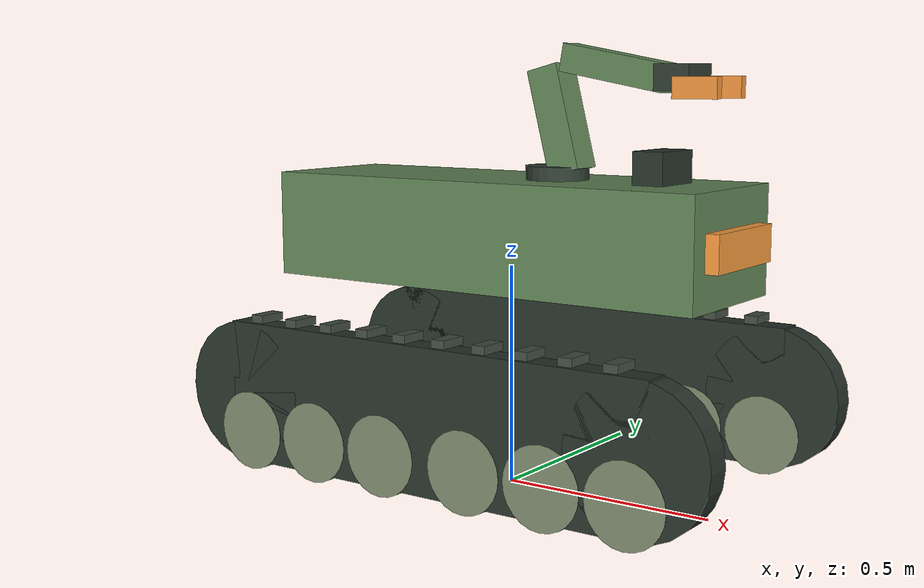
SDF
<?xml version='1.0' encoding='utf-8'?>
<sdf version="1.10">
  <model name="robot">
    <static>false</static>
    <link name="base_link">
      <inertial>
        <mass>41.0</mass>
        <pose>0 0 0.47 0 0 0</pose>
        <inertia>
          <ixx>0.5917666666666667</ixx>
          <iyy>4.182000000000001</iyy>
          <izz>4.380166666666667</izz>
        </inertia>
      </inertial>
      <collision name="body_collision">
        <pose>0 0 0.57 0 0 0</pose>
        <geometry>
          <box>
            <size>0.86 0.26 0.18</size>
          </box>
        </geometry>
        <surface>
          <friction>
            <ode>
              <mu>0.6</mu>
              <mu2>0.6</mu2>
            </ode>
          </friction>
        </surface>
      </collision>
      <visual name="body">
        <pose>0 0 0.58 0 0 0</pose>
        <geometry>
          <box>
            <size>1.08 0.34 0.24</size>
          </box>
        </geometry>
        <material>
          <diffuse>0.38 0.52 0.34 1</diffuse>
        </material>
      </visual>
      <visual name="front_marker">
        <pose>0.55 0 0.58 0 0 0</pose>
        <geometry>
          <box>
            <size>0.04 0.24480000000000002 0.08</size>
          </box>
        </geometry>
        <material>
          <diffuse>0.96 0.6 0.24 1</diffuse>
        </material>
      </visual>
      <visual name="camera">
        <pose>0.378 0 0.736 0 0 0</pose>
        <geometry>
          <box>
            <size>0.07 0.13 0.07</size>
          </box>
        </geometry>
        <material>
          <diffuse>0.16 0.2 0.17 1</diffuse>
        </material>
      </visual>
      <visual name="left_track_envelope">
        <pose>0 0.31 0.21 0 0 0</pose>
        <geometry>
          <box>
            <size>1.08 0.06 0.32</size>
          </box>
        </geometry>
        <material>
          <diffuse>0.16 0.2 0.17 1</diffuse>
        </material>
      </visual>
      <visual name="left_rear_idler_visual">
        <pose>-0.51 0.31 0.21 1.5707963267948966 0 0</pose>
        <geometry>
          <cylinder>
            <radius>0.16</radius>
            <length>0.06</length>
          </cylinder>
        </geometry>
        <material>
          <diffuse>0.16 0.2 0.17 1</diffuse>
        </material>
      </visual>
      <visual name="left_front_idler_visual">
        <pose>0.51 0.31 0.21 1.5707963267948966 0 0</pose>
        <geometry>
          <cylinder>
            <radius>0.16</radius>
            <length>0.06</length>
          </cylinder>
        </geometry>
        <material>
          <diffuse>0.16 0.2 0.17 1</diffuse>
        </material>
      </visual>
      <visual name="left_tread_0">
        <pose>-0.459 0.31 0.382 0 0 0</pose>
        <geometry>
          <box>
            <size>0.032 0.0648 0.018</size>
          </box>
        </geometry>
        <material>
          <diffuse>0.26 0.3 0.26 1</diffuse>
        </material>
      </visual>
      <visual name="left_tread_1">
        <pose>-0.357 0.31 0.382 0 0 0</pose>
        <geometry>
          <box>
            <size>0.032 0.0648 0.018</size>
          </box>
        </geometry>
        <material>
          <diffuse>0.26 0.3 0.26 1</diffuse>
        </material>
      </visual>
      <visual name="left_tread_2">
        <pose>-0.255 0.31 0.382 0 0 0</pose>
        <geometry>
          <box>
            <size>0.032 0.0648 0.018</size>
          </box>
        </geometry>
        <material>
          <diffuse>0.26 0.3 0.26 1</diffuse>
        </material>
      </visual>
      <visual name="left_tread_3">
        <pose>-0.15299999999999997 0.31 0.382 0 0 0</pose>
        <geometry>
          <box>
            <size>0.032 0.0648 0.018</size>
          </box>
        </geometry>
        <material>
          <diffuse>0.26 0.3 0.26 1</diffuse>
        </material>
      </visual>
      <visual name="left_tread_4">
        <pose>-0.051000000000000045 0.31 0.382 0 0 0</pose>
        <geometry>
          <box>
            <size>0.032 0.0648 0.018</size>
          </box>
        </geometry>
        <material>
          <diffuse>0.26 0.3 0.26 1</diffuse>
        </material>
      </visual>
      <visual name="left_tread_5">
        <pose>0.051000000000000045 0.31 0.382 0 0 0</pose>
        <geometry>
          <box>
            <size>0.032 0.0648 0.018</size>
          </box>
        </geometry>
        <material>
          <diffuse>0.26 0.3 0.26 1</diffuse>
        </material>
      </visual>
      <visual name="left_tread_6">
        <pose>0.15300000000000002 0.31 0.382 0 0 0</pose>
        <geometry>
          <box>
            <size>0.032 0.0648 0.018</size>
          </box>
        </geometry>
        <material>
          <diffuse>0.26 0.3 0.26 1</diffuse>
        </material>
      </visual>
      <visual name="left_tread_7">
        <pose>0.255 0.31 0.382 0 0 0</pose>
        <geometry>
          <box>
            <size>0.032 0.0648 0.018</size>
          </box>
        </geometry>
        <material>
          <diffuse>0.26 0.3 0.26 1</diffuse>
        </material>
      </visual>
      <visual name="left_tread_8">
        <pose>0.357 0.31 0.382 0 0 0</pose>
        <geometry>
          <box>
            <size>0.032 0.0648 0.018</size>
          </box>
        </geometry>
        <material>
          <diffuse>0.26 0.3 0.26 1</diffuse>
        </material>
      </visual>
      <visual name="left_tread_9">
        <pose>0.45899999999999996 0.31 0.382 0 0 0</pose>
        <geometry>
          <box>
            <size>0.032 0.0648 0.018</size>
          </box>
        </geometry>
        <material>
          <diffuse>0.26 0.3 0.26 1</diffuse>
        </material>
      </visual>
      <visual name="right_track_envelope">
        <pose>0 -0.31 0.21 0 0 0</pose>
        <geometry>
          <box>
            <size>1.08 0.06 0.32</size>
          </box>
        </geometry>
        <material>
          <diffuse>0.16 0.2 0.17 1</diffuse>
        </material>
      </visual>
      <visual name="right_rear_idler_visual">
        <pose>-0.51 -0.31 0.21 1.5707963267948966 0 0</pose>
        <geometry>
          <cylinder>
            <radius>0.16</radius>
            <length>0.06</length>
          </cylinder>
        </geometry>
        <material>
          <diffuse>0.16 0.2 0.17 1</diffuse>
        </material>
      </visual>
      <visual name="right_front_idler_visual">
        <pose>0.51 -0.31 0.21 1.5707963267948966 0 0</pose>
        <geometry>
          <cylinder>
            <radius>0.16</radius>
            <length>0.06</length>
          </cylinder>
        </geometry>
        <material>
          <diffuse>0.16 0.2 0.17 1</diffuse>
        </material>
      </visual>
      <visual name="right_tread_0">
        <pose>-0.459 -0.31 0.382 0 0 0</pose>
        <geometry>
          <box>
            <size>0.032 0.0648 0.018</size>
          </box>
        </geometry>
        <material>
          <diffuse>0.26 0.3 0.26 1</diffuse>
        </material>
      </visual>
      <visual name="right_tread_1">
        <pose>-0.357 -0.31 0.382 0 0 0</pose>
        <geometry>
          <box>
            <size>0.032 0.0648 0.018</size>
          </box>
        </geometry>
        <material>
          <diffuse>0.26 0.3 0.26 1</diffuse>
        </material>
      </visual>
      <visual name="right_tread_2">
        <pose>-0.255 -0.31 0.382 0 0 0</pose>
        <geometry>
          <box>
            <size>0.032 0.0648 0.018</size>
          </box>
        </geometry>
        <material>
          <diffuse>0.26 0.3 0.26 1</diffuse>
        </material>
      </visual>
      <visual name="right_tread_3">
        <pose>-0.15299999999999997 -0.31 0.382 0 0 0</pose>
        <geometry>
          <box>
            <size>0.032 0.0648 0.018</size>
          </box>
        </geometry>
        <material>
          <diffuse>0.26 0.3 0.26 1</diffuse>
        </material>
      </visual>
      <visual name="right_tread_4">
        <pose>-0.051000000000000045 -0.31 0.382 0 0 0</pose>
        <geometry>
          <box>
            <size>0.032 0.0648 0.018</size>
          </box>
        </geometry>
        <material>
          <diffuse>0.26 0.3 0.26 1</diffuse>
        </material>
      </visual>
      <visual name="right_tread_5">
        <pose>0.051000000000000045 -0.31 0.382 0 0 0</pose>
        <geometry>
          <box>
            <size>0.032 0.0648 0.018</size>
          </box>
        </geometry>
        <material>
          <diffuse>0.26 0.3 0.26 1</diffuse>
        </material>
      </visual>
      <visual name="right_tread_6">
        <pose>0.15300000000000002 -0.31 0.382 0 0 0</pose>
        <geometry>
          <box>
            <size>0.032 0.0648 0.018</size>
          </box>
        </geometry>
        <material>
          <diffuse>0.26 0.3 0.26 1</diffuse>
        </material>
      </visual>
      <visual name="right_tread_7">
        <pose>0.255 -0.31 0.382 0 0 0</pose>
        <geometry>
          <box>
            <size>0.032 0.0648 0.018</size>
          </box>
        </geometry>
        <material>
          <diffuse>0.26 0.3 0.26 1</diffuse>
        </material>
      </visual>
      <visual name="right_tread_8">
        <pose>0.357 -0.31 0.382 0 0 0</pose>
        <geometry>
          <box>
            <size>0.032 0.0648 0.018</size>
          </box>
        </geometry>
        <material>
          <diffuse>0.26 0.3 0.26 1</diffuse>
        </material>
      </visual>
      <visual name="right_tread_9">
        <pose>0.45899999999999996 -0.31 0.382 0 0 0</pose>
        <geometry>
          <box>
            <size>0.032 0.0648 0.018</size>
          </box>
        </geometry>
        <material>
          <diffuse>0.26 0.3 0.26 1</diffuse>
        </material>
      </visual>
      <visual name="arm_base_0">
        <pose>0.12 0 0.6799999999999999 0 0 0</pose>
        <geometry>
          <cylinder>
            <radius>0.07</radius>
            <length>0.1</length>
          </cylinder>
        </geometry>
        <material>
          <diffuse>0.18 0.23 0.19 1</diffuse>
        </material>
      </visual>
      <visual name="upper_arm_0">
        <pose>0.13 0 0.83 0 -0.25 0</pose>
        <geometry>
          <box>
            <size>0.075 0.075 0.23</size>
          </box>
        </geometry>
        <material>
          <diffuse>0.38 0.52 0.34 1</diffuse>
        </material>
      </visual>
      <visual name="forearm_0">
        <pose>0.27 0 0.94 0 0.18 0</pose>
        <geometry>
          <box>
            <size>0.25 0.06 0.06</size>
          </box>
        </geometry>
        <material>
          <diffuse>0.38 0.52 0.34 1</diffuse>
        </material>
      </visual>
      <visual name="wrist_0">
        <pose>0.42 0 0.9199999999999999 0 0 0</pose>
        <geometry>
          <box>
            <size>0.08 0.1 0.055</size>
          </box>
        </geometry>
        <material>
          <diffuse>0.18 0.23 0.19 1</diffuse>
        </material>
      </visual>
      <visual name="jaw_0_-0.055">
        <pose>0.48 -0.055 0.8999999999999999 0 0 0</pose>
        <geometry>
          <box>
            <size>0.1 0.02 0.045</size>
          </box>
        </geometry>
        <material>
          <diffuse>0.94 0.58 0.24 1</diffuse>
        </material>
      </visual>
      <visual name="jaw_0_0.055">
        <pose>0.48 0.055 0.8999999999999999 0 0 0</pose>
        <geometry>
          <box>
            <size>0.1 0.02 0.045</size>
          </box>
        </geometry>
        <material>
          <diffuse>0.94 0.58 0.24 1</diffuse>
        </material>
      </visual>
      <sensor name="imu" type="imu">
        <always_on>true</always_on>
        <update_rate>50</update_rate>
        <topic>/garden/imu</topic>
        <imu />
      </sensor>
    </link>
    <link name="left_carrier_0">
      <pose>-0.49 0.31 0.12 0 0 0</pose>
      <inertial>
        <mass>0.06</mass>
        <pose>0 0 0 0 0 0</pose>
        <inertia>
          <ixx>9e-06</ixx>
          <iyy>9e-06</iyy>
          <izz>9e-06</izz>
        </inertia>
      </inertial>
    </link>
    <joint name="left_suspension_0" type="prismatic">
      <parent>base_link</parent>
      <child>left_carrier_0</child>
      <axis>
        <xyz>0 0 1</xyz>
        <limit>
          <lower>-0.1</lower>
          <upper>0.1</upper>
          <effort>2500</effort>
          <velocity>1.5</velocity>
        </limit>
        <dynamics>
          <damping>140</damping>
          <spring_reference>0</spring_reference>
          <spring_stiffness>7100</spring_stiffness>
        </dynamics>
      </axis>
    </joint>
    <link name="left_wheel">
      <pose>-0.49 0.31 0.12 1.5707963267948966 0 0</pose>
      <inertial>
        <mass>0.92</mass>
        <inertia>
          <ixx>0.00346725</ixx>
          <iyy>0.00346725</iyy>
          <izz>0.006624</izz>
        </inertia>
      </inertial>
      <collision name="wheel_collision">
        <pose>0 0 0 0 0 0</pose>
        <geometry>
          <cylinder>
            <radius>0.12</radius>
            <length>0.045</length>
          </cylinder>
        </geometry>
        <surface>
          <friction>
            <ode>
              <mu>0.9</mu>
              <mu2>0.9</mu2>
            </ode>
          </friction>
        </surface>
      </collision>
      <visual name="roller">
        <pose>0 0 0 0 0 0</pose>
        <geometry>
          <cylinder>
            <radius>0.09</radius>
            <length>0.06075</length>
          </cylinder>
        </geometry>
        <material>
          <diffuse>0.48 0.53 0.42 1</diffuse>
        </material>
      </visual>
    </link>
    <joint name="left_joint" type="revolute">
      <parent>left_carrier_0</parent>
      <child>left_wheel</child>
      <axis>
        <xyz>0 0 -1</xyz>
        <limit>
          <effort>42.0</effort>
          <velocity>9.0</velocity>
        </limit>
      </axis>
    </joint>
    <link name="left_carrier_1">
      <pose>-0.3 0.31 0.12 0 0 0</pose>
      <inertial>
        <mass>0.06</mass>
        <pose>0 0 0 0 0 0</pose>
        <inertia>
          <ixx>9e-06</ixx>
          <iyy>9e-06</iyy>
          <izz>9e-06</izz>
        </inertia>
      </inertial>
    </link>
    <joint name="left_suspension_1" type="prismatic">
      <parent>base_link</parent>
      <child>left_carrier_1</child>
      <axis>
        <xyz>0 0 1</xyz>
        <limit>
          <lower>-0.1</lower>
          <upper>0.1</upper>
          <effort>2500</effort>
          <velocity>1.5</velocity>
        </limit>
        <dynamics>
          <damping>140</damping>
          <spring_reference>0</spring_reference>
          <spring_stiffness>7100</spring_stiffness>
        </dynamics>
      </axis>
    </joint>
    <link name="left_wheel_1">
      <pose>-0.3 0.31 0.12 1.5707963267948966 0 0</pose>
      <inertial>
        <mass>0.92</mass>
        <inertia>
          <ixx>0.00346725</ixx>
          <iyy>0.00346725</iyy>
          <izz>0.006624</izz>
        </inertia>
      </inertial>
      <collision name="wheel_collision">
        <pose>0 0 0 0 0 0</pose>
        <geometry>
          <cylinder>
            <radius>0.12</radius>
            <length>0.045</length>
          </cylinder>
        </geometry>
        <surface>
          <friction>
            <ode>
              <mu>0.9</mu>
              <mu2>0.9</mu2>
            </ode>
          </friction>
        </surface>
      </collision>
      <visual name="roller">
        <pose>0 0 0 0 0 0</pose>
        <geometry>
          <cylinder>
            <radius>0.09</radius>
            <length>0.06075</length>
          </cylinder>
        </geometry>
        <material>
          <diffuse>0.48 0.53 0.42 1</diffuse>
        </material>
      </visual>
    </link>
    <joint name="left_joint_1" type="revolute">
      <parent>left_carrier_1</parent>
      <child>left_wheel_1</child>
      <axis>
        <xyz>0 0 -1</xyz>
        <limit>
          <effort>42.0</effort>
          <velocity>9.0</velocity>
        </limit>
      </axis>
    </joint>
    <link name="left_carrier_2">
      <pose>-0.11 0.31 0.12 0 0 0</pose>
      <inertial>
        <mass>0.06</mass>
        <pose>0 0 0 0 0 0</pose>
        <inertia>
          <ixx>9e-06</ixx>
          <iyy>9e-06</iyy>
          <izz>9e-06</izz>
        </inertia>
      </inertial>
    </link>
    <joint name="left_suspension_2" type="prismatic">
      <parent>base_link</parent>
      <child>left_carrier_2</child>
      <axis>
        <xyz>0 0 1</xyz>
        <limit>
          <lower>-0.1</lower>
          <upper>0.1</upper>
          <effort>2500</effort>
          <velocity>1.5</velocity>
        </limit>
        <dynamics>
          <damping>140</damping>
          <spring_reference>0</spring_reference>
          <spring_stiffness>7100</spring_stiffness>
        </dynamics>
      </axis>
    </joint>
    <link name="left_wheel_2">
      <pose>-0.11 0.31 0.12 1.5707963267948966 0 0</pose>
      <inertial>
        <mass>0.92</mass>
        <inertia>
          <ixx>0.00346725</ixx>
          <iyy>0.00346725</iyy>
          <izz>0.006624</izz>
        </inertia>
      </inertial>
      <collision name="wheel_collision">
        <pose>0 0 0 0 0 0</pose>
        <geometry>
          <cylinder>
            <radius>0.12</radius>
            <length>0.045</length>
          </cylinder>
        </geometry>
        <surface>
          <friction>
            <ode>
              <mu>0.9</mu>
              <mu2>0.9</mu2>
            </ode>
          </friction>
        </surface>
      </collision>
      <visual name="roller">
        <pose>0 0 0 0 0 0</pose>
        <geometry>
          <cylinder>
            <radius>0.09</radius>
            <length>0.06075</length>
          </cylinder>
        </geometry>
        <material>
          <diffuse>0.48 0.53 0.42 1</diffuse>
        </material>
      </visual>
    </link>
    <joint name="left_joint_2" type="revolute">
      <parent>left_carrier_2</parent>
      <child>left_wheel_2</child>
      <axis>
        <xyz>0 0 -1</xyz>
        <limit>
          <effort>42.0</effort>
          <velocity>9.0</velocity>
        </limit>
      </axis>
    </joint>
    <link name="left_carrier_3">
      <pose>0.11 0.31 0.12 0 0 0</pose>
      <inertial>
        <mass>0.06</mass>
        <pose>0 0 0 0 0 0</pose>
        <inertia>
          <ixx>9e-06</ixx>
          <iyy>9e-06</iyy>
          <izz>9e-06</izz>
        </inertia>
      </inertial>
    </link>
    <joint name="left_suspension_3" type="prismatic">
      <parent>base_link</parent>
      <child>left_carrier_3</child>
      <axis>
        <xyz>0 0 1</xyz>
        <limit>
          <lower>-0.1</lower>
          <upper>0.1</upper>
          <effort>2500</effort>
          <velocity>1.5</velocity>
        </limit>
        <dynamics>
          <damping>140</damping>
          <spring_reference>0</spring_reference>
          <spring_stiffness>7100</spring_stiffness>
        </dynamics>
      </axis>
    </joint>
    <link name="left_wheel_3">
      <pose>0.11 0.31 0.12 1.5707963267948966 0 0</pose>
      <inertial>
        <mass>0.92</mass>
        <inertia>
          <ixx>0.00346725</ixx>
          <iyy>0.00346725</iyy>
          <izz>0.006624</izz>
        </inertia>
      </inertial>
      <collision name="wheel_collision">
        <pose>0 0 0 0 0 0</pose>
        <geometry>
          <cylinder>
            <radius>0.12</radius>
            <length>0.045</length>
          </cylinder>
        </geometry>
        <surface>
          <friction>
            <ode>
              <mu>0.9</mu>
              <mu2>0.9</mu2>
            </ode>
          </friction>
        </surface>
      </collision>
      <visual name="roller">
        <pose>0 0 0 0 0 0</pose>
        <geometry>
          <cylinder>
            <radius>0.09</radius>
            <length>0.06075</length>
          </cylinder>
        </geometry>
        <material>
          <diffuse>0.48 0.53 0.42 1</diffuse>
        </material>
      </visual>
    </link>
    <joint name="left_joint_3" type="revolute">
      <parent>left_carrier_3</parent>
      <child>left_wheel_3</child>
      <axis>
        <xyz>0 0 -1</xyz>
        <limit>
          <effort>42.0</effort>
          <velocity>9.0</velocity>
        </limit>
      </axis>
    </joint>
    <link name="left_carrier_4">
      <pose>0.3 0.31 0.12 0 0 0</pose>
      <inertial>
        <mass>0.06</mass>
        <pose>0 0 0 0 0 0</pose>
        <inertia>
          <ixx>9e-06</ixx>
          <iyy>9e-06</iyy>
          <izz>9e-06</izz>
        </inertia>
      </inertial>
    </link>
    <joint name="left_suspension_4" type="prismatic">
      <parent>base_link</parent>
      <child>left_carrier_4</child>
      <axis>
        <xyz>0 0 1</xyz>
        <limit>
          <lower>-0.1</lower>
          <upper>0.1</upper>
          <effort>2500</effort>
          <velocity>1.5</velocity>
        </limit>
        <dynamics>
          <damping>140</damping>
          <spring_reference>0</spring_reference>
          <spring_stiffness>7100</spring_stiffness>
        </dynamics>
      </axis>
    </joint>
    <link name="left_wheel_4">
      <pose>0.3 0.31 0.12 1.5707963267948966 0 0</pose>
      <inertial>
        <mass>0.92</mass>
        <inertia>
          <ixx>0.00346725</ixx>
          <iyy>0.00346725</iyy>
          <izz>0.006624</izz>
        </inertia>
      </inertial>
      <collision name="wheel_collision">
        <pose>0 0 0 0 0 0</pose>
        <geometry>
          <cylinder>
            <radius>0.12</radius>
            <length>0.045</length>
          </cylinder>
        </geometry>
        <surface>
          <friction>
            <ode>
              <mu>0.9</mu>
              <mu2>0.9</mu2>
            </ode>
          </friction>
        </surface>
      </collision>
      <visual name="roller">
        <pose>0 0 0 0 0 0</pose>
        <geometry>
          <cylinder>
            <radius>0.09</radius>
            <length>0.06075</length>
          </cylinder>
        </geometry>
        <material>
          <diffuse>0.48 0.53 0.42 1</diffuse>
        </material>
      </visual>
    </link>
    <joint name="left_joint_4" type="revolute">
      <parent>left_carrier_4</parent>
      <child>left_wheel_4</child>
      <axis>
        <xyz>0 0 -1</xyz>
        <limit>
          <effort>42.0</effort>
          <velocity>9.0</velocity>
        </limit>
      </axis>
    </joint>
    <link name="left_carrier_5">
      <pose>0.49 0.31 0.12 0 0 0</pose>
      <inertial>
        <mass>0.06</mass>
        <pose>0 0 0 0 0 0</pose>
        <inertia>
          <ixx>9e-06</ixx>
          <iyy>9e-06</iyy>
          <izz>9e-06</izz>
        </inertia>
      </inertial>
    </link>
    <joint name="left_suspension_5" type="prismatic">
      <parent>base_link</parent>
      <child>left_carrier_5</child>
      <axis>
        <xyz>0 0 1</xyz>
        <limit>
          <lower>-0.1</lower>
          <upper>0.1</upper>
          <effort>2500</effort>
          <velocity>1.5</velocity>
        </limit>
        <dynamics>
          <damping>140</damping>
          <spring_reference>0</spring_reference>
          <spring_stiffness>7100</spring_stiffness>
        </dynamics>
      </axis>
    </joint>
    <link name="left_wheel_5">
      <pose>0.49 0.31 0.12 1.5707963267948966 0 0</pose>
      <inertial>
        <mass>0.92</mass>
        <inertia>
          <ixx>0.00346725</ixx>
          <iyy>0.00346725</iyy>
          <izz>0.006624</izz>
        </inertia>
      </inertial>
      <collision name="wheel_collision">
        <pose>0 0 0 0 0 0</pose>
        <geometry>
          <cylinder>
            <radius>0.12</radius>
            <length>0.045</length>
          </cylinder>
        </geometry>
        <surface>
          <friction>
            <ode>
              <mu>0.9</mu>
              <mu2>0.9</mu2>
            </ode>
          </friction>
        </surface>
      </collision>
      <visual name="roller">
        <pose>0 0 0 0 0 0</pose>
        <geometry>
          <cylinder>
            <radius>0.09</radius>
            <length>0.06075</length>
          </cylinder>
        </geometry>
        <material>
          <diffuse>0.48 0.53 0.42 1</diffuse>
        </material>
      </visual>
    </link>
    <joint name="left_joint_5" type="revolute">
      <parent>left_carrier_5</parent>
      <child>left_wheel_5</child>
      <axis>
        <xyz>0 0 -1</xyz>
        <limit>
          <effort>42.0</effort>
          <velocity>9.0</velocity>
        </limit>
      </axis>
    </joint>
    <link name="right_carrier_0">
      <pose>-0.49 -0.31 0.12 0 0 0</pose>
      <inertial>
        <mass>0.06</mass>
        <pose>0 0 0 0 0 0</pose>
        <inertia>
          <ixx>9e-06</ixx>
          <iyy>9e-06</iyy>
          <izz>9e-06</izz>
        </inertia>
      </inertial>
    </link>
    <joint name="right_suspension_0" type="prismatic">
      <parent>base_link</parent>
      <child>right_carrier_0</child>
      <axis>
        <xyz>0 0 1</xyz>
        <limit>
          <lower>-0.1</lower>
          <upper>0.1</upper>
          <effort>2500</effort>
          <velocity>1.5</velocity>
        </limit>
        <dynamics>
          <damping>140</damping>
          <spring_reference>0</spring_reference>
          <spring_stiffness>7100</spring_stiffness>
        </dynamics>
      </axis>
    </joint>
    <link name="right_wheel">
      <pose>-0.49 -0.31 0.12 1.5707963267948966 0 0</pose>
      <inertial>
        <mass>0.92</mass>
        <inertia>
          <ixx>0.00346725</ixx>
          <iyy>0.00346725</iyy>
          <izz>0.006624</izz>
        </inertia>
      </inertial>
      <collision name="wheel_collision">
        <pose>0 0 0 0 0 0</pose>
        <geometry>
          <cylinder>
            <radius>0.12</radius>
            <length>0.045</length>
          </cylinder>
        </geometry>
        <surface>
          <friction>
            <ode>
              <mu>0.9</mu>
              <mu2>0.9</mu2>
            </ode>
          </friction>
        </surface>
      </collision>
      <visual name="roller">
        <pose>0 0 0 0 0 0</pose>
        <geometry>
          <cylinder>
            <radius>0.09</radius>
            <length>0.06075</length>
          </cylinder>
        </geometry>
        <material>
          <diffuse>0.48 0.53 0.42 1</diffuse>
        </material>
      </visual>
    </link>
    <joint name="right_joint" type="revolute">
      <parent>right_carrier_0</parent>
      <child>right_wheel</child>
      <axis>
        <xyz>0 0 -1</xyz>
        <limit>
          <effort>42.0</effort>
          <velocity>9.0</velocity>
        </limit>
      </axis>
    </joint>
    <link name="right_carrier_1">
      <pose>-0.3 -0.31 0.12 0 0 0</pose>
      <inertial>
        <mass>0.06</mass>
        <pose>0 0 0 0 0 0</pose>
        <inertia>
          <ixx>9e-06</ixx>
          <iyy>9e-06</iyy>
          <izz>9e-06</izz>
        </inertia>
      </inertial>
    </link>
    <joint name="right_suspension_1" type="prismatic">
      <parent>base_link</parent>
      <child>right_carrier_1</child>
      <axis>
        <xyz>0 0 1</xyz>
        <limit>
          <lower>-0.1</lower>
          <upper>0.1</upper>
          <effort>2500</effort>
          <velocity>1.5</velocity>
        </limit>
        <dynamics>
          <damping>140</damping>
          <spring_reference>0</spring_reference>
          <spring_stiffness>7100</spring_stiffness>
        </dynamics>
      </axis>
    </joint>
    <link name="right_wheel_1">
      <pose>-0.3 -0.31 0.12 1.5707963267948966 0 0</pose>
      <inertial>
        <mass>0.92</mass>
        <inertia>
          <ixx>0.00346725</ixx>
          <iyy>0.00346725</iyy>
          <izz>0.006624</izz>
        </inertia>
      </inertial>
      <collision name="wheel_collision">
        <pose>0 0 0 0 0 0</pose>
        <geometry>
          <cylinder>
            <radius>0.12</radius>
            <length>0.045</length>
          </cylinder>
        </geometry>
        <surface>
          <friction>
            <ode>
              <mu>0.9</mu>
              <mu2>0.9</mu2>
            </ode>
          </friction>
        </surface>
      </collision>
      <visual name="roller">
        <pose>0 0 0 0 0 0</pose>
        <geometry>
          <cylinder>
            <radius>0.09</radius>
            <length>0.06075</length>
          </cylinder>
        </geometry>
        <material>
          <diffuse>0.48 0.53 0.42 1</diffuse>
        </material>
      </visual>
    </link>
    <joint name="right_joint_1" type="revolute">
      <parent>right_carrier_1</parent>
      <child>right_wheel_1</child>
      <axis>
        <xyz>0 0 -1</xyz>
        <limit>
          <effort>42.0</effort>
          <velocity>9.0</velocity>
        </limit>
      </axis>
    </joint>
    <link name="right_carrier_2">
      <pose>-0.11 -0.31 0.12 0 0 0</pose>
      <inertial>
        <mass>0.06</mass>
        <pose>0 0 0 0 0 0</pose>
        <inertia>
          <ixx>9e-06</ixx>
          <iyy>9e-06</iyy>
          <izz>9e-06</izz>
        </inertia>
      </inertial>
    </link>
    <joint name="right_suspension_2" type="prismatic">
      <parent>base_link</parent>
      <child>right_carrier_2</child>
      <axis>
        <xyz>0 0 1</xyz>
        <limit>
          <lower>-0.1</lower>
          <upper>0.1</upper>
          <effort>2500</effort>
          <velocity>1.5</velocity>
        </limit>
        <dynamics>
          <damping>140</damping>
          <spring_reference>0</spring_reference>
          <spring_stiffness>7100</spring_stiffness>
        </dynamics>
      </axis>
    </joint>
    <link name="right_wheel_2">
      <pose>-0.11 -0.31 0.12 1.5707963267948966 0 0</pose>
      <inertial>
        <mass>0.92</mass>
        <inertia>
          <ixx>0.00346725</ixx>
          <iyy>0.00346725</iyy>
          <izz>0.006624</izz>
        </inertia>
      </inertial>
      <collision name="wheel_collision">
        <pose>0 0 0 0 0 0</pose>
        <geometry>
          <cylinder>
            <radius>0.12</radius>
            <length>0.045</length>
          </cylinder>
        </geometry>
        <surface>
          <friction>
            <ode>
              <mu>0.9</mu>
              <mu2>0.9</mu2>
            </ode>
          </friction>
        </surface>
      </collision>
      <visual name="roller">
        <pose>0 0 0 0 0 0</pose>
        <geometry>
          <cylinder>
            <radius>0.09</radius>
            <length>0.06075</length>
          </cylinder>
        </geometry>
        <material>
          <diffuse>0.48 0.53 0.42 1</diffuse>
        </material>
      </visual>
    </link>
    <joint name="right_joint_2" type="revolute">
      <parent>right_carrier_2</parent>
      <child>right_wheel_2</child>
      <axis>
        <xyz>0 0 -1</xyz>
        <limit>
          <effort>42.0</effort>
          <velocity>9.0</velocity>
        </limit>
      </axis>
    </joint>
    <link name="right_carrier_3">
      <pose>0.11 -0.31 0.12 0 0 0</pose>
      <inertial>
        <mass>0.06</mass>
        <pose>0 0 0 0 0 0</pose>
        <inertia>
          <ixx>9e-06</ixx>
          <iyy>9e-06</iyy>
          <izz>9e-06</izz>
        </inertia>
      </inertial>
    </link>
    <joint name="right_suspension_3" type="prismatic">
      <parent>base_link</parent>
      <child>right_carrier_3</child>
      <axis>
        <xyz>0 0 1</xyz>
        <limit>
          <lower>-0.1</lower>
          <upper>0.1</upper>
          <effort>2500</effort>
          <velocity>1.5</velocity>
        </limit>
        <dynamics>
          <damping>140</damping>
          <spring_reference>0</spring_reference>
          <spring_stiffness>7100</spring_stiffness>
        </dynamics>
      </axis>
    </joint>
    <link name="right_wheel_3">
      <pose>0.11 -0.31 0.12 1.5707963267948966 0 0</pose>
      <inertial>
        <mass>0.92</mass>
        <inertia>
          <ixx>0.00346725</ixx>
          <iyy>0.00346725</iyy>
          <izz>0.006624</izz>
        </inertia>
      </inertial>
      <collision name="wheel_collision">
        <pose>0 0 0 0 0 0</pose>
        <geometry>
          <cylinder>
            <radius>0.12</radius>
            <length>0.045</length>
          </cylinder>
        </geometry>
        <surface>
          <friction>
            <ode>
              <mu>0.9</mu>
              <mu2>0.9</mu2>
            </ode>
          </friction>
        </surface>
      </collision>
      <visual name="roller">
        <pose>0 0 0 0 0 0</pose>
        <geometry>
          <cylinder>
            <radius>0.09</radius>
            <length>0.06075</length>
          </cylinder>
        </geometry>
        <material>
          <diffuse>0.48 0.53 0.42 1</diffuse>
        </material>
      </visual>
    </link>
    <joint name="right_joint_3" type="revolute">
      <parent>right_carrier_3</parent>
      <child>right_wheel_3</child>
      <axis>
        <xyz>0 0 -1</xyz>
        <limit>
          <effort>42.0</effort>
          <velocity>9.0</velocity>
        </limit>
      </axis>
    </joint>
    <link name="right_carrier_4">
      <pose>0.3 -0.31 0.12 0 0 0</pose>
      <inertial>
        <mass>0.06</mass>
        <pose>0 0 0 0 0 0</pose>
        <inertia>
          <ixx>9e-06</ixx>
          <iyy>9e-06</iyy>
          <izz>9e-06</izz>
        </inertia>
      </inertial>
    </link>
    <joint name="right_suspension_4" type="prismatic">
      <parent>base_link</parent>
      <child>right_carrier_4</child>
      <axis>
        <xyz>0 0 1</xyz>
        <limit>
          <lower>-0.1</lower>
          <upper>0.1</upper>
          <effort>2500</effort>
          <velocity>1.5</velocity>
        </limit>
        <dynamics>
          <damping>140</damping>
          <spring_reference>0</spring_reference>
          <spring_stiffness>7100</spring_stiffness>
        </dynamics>
      </axis>
    </joint>
    <link name="right_wheel_4">
      <pose>0.3 -0.31 0.12 1.5707963267948966 0 0</pose>
      <inertial>
        <mass>0.92</mass>
        <inertia>
          <ixx>0.00346725</ixx>
          <iyy>0.00346725</iyy>
          <izz>0.006624</izz>
        </inertia>
      </inertial>
      <collision name="wheel_collision">
        <pose>0 0 0 0 0 0</pose>
        <geometry>
          <cylinder>
            <radius>0.12</radius>
            <length>0.045</length>
          </cylinder>
        </geometry>
        <surface>
          <friction>
            <ode>
              <mu>0.9</mu>
              <mu2>0.9</mu2>
            </ode>
          </friction>
        </surface>
      </collision>
      <visual name="roller">
        <pose>0 0 0 0 0 0</pose>
        <geometry>
          <cylinder>
            <radius>0.09</radius>
            <length>0.06075</length>
          </cylinder>
        </geometry>
        <material>
          <diffuse>0.48 0.53 0.42 1</diffuse>
        </material>
      </visual>
    </link>
    <joint name="right_joint_4" type="revolute">
      <parent>right_carrier_4</parent>
      <child>right_wheel_4</child>
      <axis>
        <xyz>0 0 -1</xyz>
        <limit>
          <effort>42.0</effort>
          <velocity>9.0</velocity>
        </limit>
      </axis>
    </joint>
    <link name="right_carrier_5">
      <pose>0.49 -0.31 0.12 0 0 0</pose>
      <inertial>
        <mass>0.06</mass>
        <pose>0 0 0 0 0 0</pose>
        <inertia>
          <ixx>9e-06</ixx>
          <iyy>9e-06</iyy>
          <izz>9e-06</izz>
        </inertia>
      </inertial>
    </link>
    <joint name="right_suspension_5" type="prismatic">
      <parent>base_link</parent>
      <child>right_carrier_5</child>
      <axis>
        <xyz>0 0 1</xyz>
        <limit>
          <lower>-0.1</lower>
          <upper>0.1</upper>
          <effort>2500</effort>
          <velocity>1.5</velocity>
        </limit>
        <dynamics>
          <damping>140</damping>
          <spring_reference>0</spring_reference>
          <spring_stiffness>7100</spring_stiffness>
        </dynamics>
      </axis>
    </joint>
    <link name="right_wheel_5">
      <pose>0.49 -0.31 0.12 1.5707963267948966 0 0</pose>
      <inertial>
        <mass>0.92</mass>
        <inertia>
          <ixx>0.00346725</ixx>
          <iyy>0.00346725</iyy>
          <izz>0.006624</izz>
        </inertia>
      </inertial>
      <collision name="wheel_collision">
        <pose>0 0 0 0 0 0</pose>
        <geometry>
          <cylinder>
            <radius>0.12</radius>
            <length>0.045</length>
          </cylinder>
        </geometry>
        <surface>
          <friction>
            <ode>
              <mu>0.9</mu>
              <mu2>0.9</mu2>
            </ode>
          </friction>
        </surface>
      </collision>
      <visual name="roller">
        <pose>0 0 0 0 0 0</pose>
        <geometry>
          <cylinder>
            <radius>0.09</radius>
            <length>0.06075</length>
          </cylinder>
        </geometry>
        <material>
          <diffuse>0.48 0.53 0.42 1</diffuse>
        </material>
      </visual>
    </link>
    <joint name="right_joint_5" type="revolute">
      <parent>right_carrier_5</parent>
      <child>right_wheel_5</child>
      <axis>
        <xyz>0 0 -1</xyz>
        <limit>
          <effort>42.0</effort>
          <velocity>9.0</velocity>
        </limit>
      </axis>
    </joint>
    <plugin filename="gz-sim-diff-drive-system" name="gz::sim::systems::DiffDrive">
      <left_joint>left_joint</left_joint>
      <left_joint>left_joint_1</left_joint>
      <left_joint>left_joint_2</left_joint>
      <left_joint>left_joint_3</left_joint>
      <left_joint>left_joint_4</left_joint>
      <left_joint>left_joint_5</left_joint>
      <right_joint>right_joint</right_joint>
      <right_joint>right_joint_1</right_joint>
      <right_joint>right_joint_2</right_joint>
      <right_joint>right_joint_3</right_joint>
      <right_joint>right_joint_4</right_joint>
      <right_joint>right_joint_5</right_joint>
      <wheel_separation>0.62</wheel_separation>
      <wheel_radius>0.12</wheel_radius>
      <topic>/garden/cmd_vel</topic>
      <odom_topic>/garden/odom</odom_topic>
      <frame_id>odom</frame_id>
      <child_frame_id>base_link</child_frame_id>
      <odom_publish_frequency>30</odom_publish_frequency>
      <min_linear_velocity>-0.35</min_linear_velocity>
      <max_linear_velocity>0.35</max_linear_velocity>
      <min_angular_velocity>-0.9</min_angular_velocity>
      <max_angular_velocity>0.9</max_angular_velocity>
      <min_linear_acceleration>-0.6</min_linear_acceleration>
      <max_linear_acceleration>0.6</max_linear_acceleration>
      <min_angular_acceleration>-1.5</min_angular_acceleration>
      <max_angular_acceleration>1.5</max_angular_acceleration>
    </plugin>
    <plugin filename="gz-sim-joint-state-publisher-system" name="gz::sim::systems::JointStatePublisher">
      <topic>/garden/joint_states</topic>
      <joint_name>left_joint</joint_name>
      <joint_name>left_joint_1</joint_name>
      <joint_name>left_joint_2</joint_name>
      <joint_name>left_joint_3</joint_name>
      <joint_name>left_joint_4</joint_name>
      <joint_name>left_joint_5</joint_name>
      <joint_name>right_joint</joint_name>
      <joint_name>right_joint_1</joint_name>
      <joint_name>right_joint_2</joint_name>
      <joint_name>right_joint_3</joint_name>
      <joint_name>right_joint_4</joint_name>
      <joint_name>right_joint_5</joint_name>
      <update_rate>100</update_rate>
    </plugin>
    <plugin filename="gz-sim-pose-publisher-system" name="gz::sim::systems::PosePublisher">
      <publish_model_pose>true</publish_model_pose>
      <publish_link_pose>true</publish_link_pose>
      <publish_visual_pose>false</publish_visual_pose>
      <publish_collision_pose>false</publish_collision_pose>
      <publish_sensor_pose>false</publish_sensor_pose>
      <use_pose_vector_msg>true</use_pose_vector_msg>
      <update_frequency>20</update_frequency>
    </plugin>
  </model>
</sdf>
